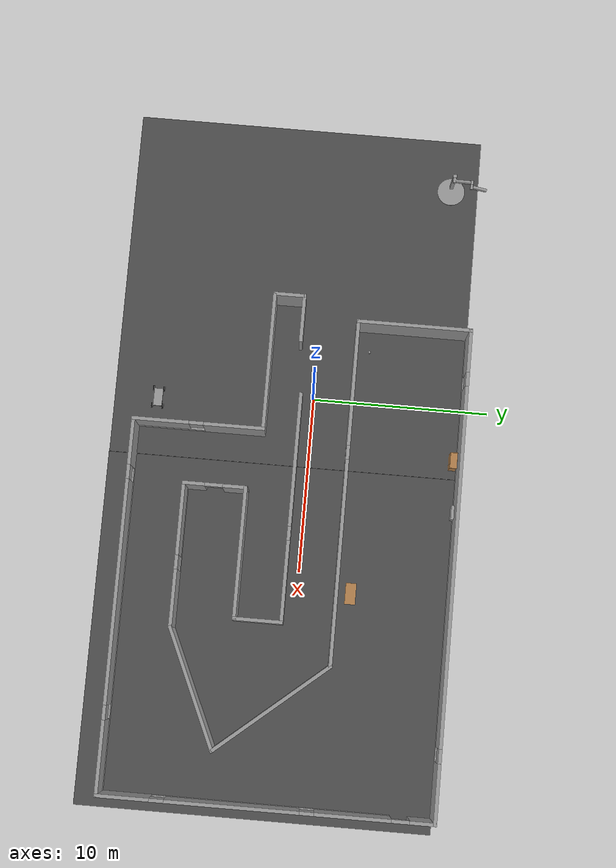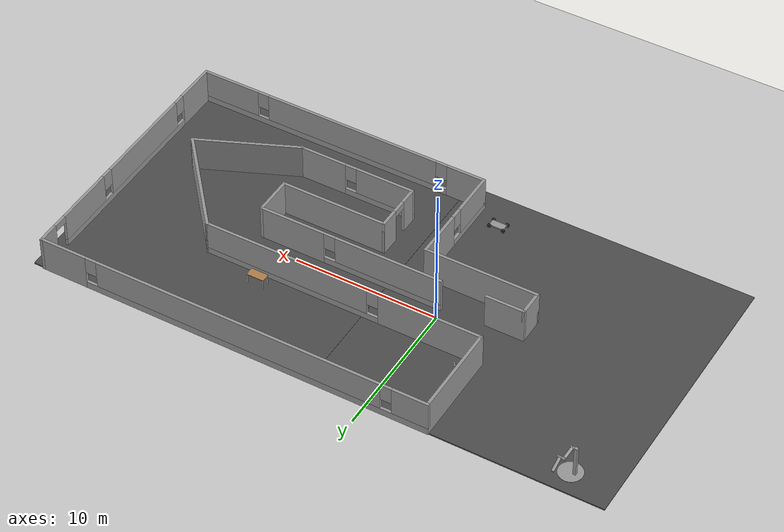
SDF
<sdf version="1.4">
 <world name="default">
  <light name="sun" type="directional">
   <pose>0 0 10 0 -0 0</pose>
   <diffuse>0.8 0.8 0.8 1</diffuse>
   <specular>0.2 0.2 0.2 1</specular>
   <attenuation>
    <range>1000</range>
    <constant>0.9</constant>
    <linear>0.01</linear>
    <quadratic>0.001</quadratic>
   </attenuation>
   <direction>-0.5 0.1 -0.9</direction>
  </light>
  <model name="ground_plane">
   <static>1</static>
   <link name="link">
    <collision name="collision">
     <geometry><plane><normal>0 0 1</normal><size>100 100</size></plane></geometry>
     <surface><friction><ode><mu>100</mu><mu2>50</mu2></ode></friction></surface>
    </collision>
    <visual name="visual">
     <cast_shadows>0</cast_shadows>
     <geometry><plane><normal>0 0 1</normal><size>100 100</size></plane></geometry>
     <material>
      <script><uri>file://media/materials/scripts/gazebo.material</uri><name>Gazebo/Grey</name></script>
     </material>
    </visual>
    <velocity_decay><linear>0</linear><angular>0</angular></velocity_decay>
   </link>
  </model>
  <physics type="ode">
   <max_step_size>0.001</max_step_size>
   <real_time_factor>1</real_time_factor>
   <real_time_update_rate>1000</real_time_update_rate>
   <gravity>0 0 -9.8</gravity>
  </physics>
  <scene><ambient>0.4 0.4 0.4 1</ambient><background>0.7 0.7 0.7 1</background><shadows>1</shadows></scene>
  <spherical_coordinates>
   <surface_model>EARTH_WGS84</surface_model>
   <latitude_deg>0</latitude_deg>
   <longitude_deg>0</longitude_deg>
   <elevation>0</elevation>
   <heading_deg>0</heading_deg>
  </spherical_coordinates>
  <model name="my_world">
   <pose>-0.155694 -0.029051 0 0 -0 0</pose>
   <link name="Wall_0">
    <collision name="Wall_0_Collision">
     <geometry><box><size>2.74 0.2 2.5</size></box></geometry>
     <pose>0 0 1.25 0 -0 0</pose>
    </collision>
    <visual name="Wall_0_Visual">
     <pose>0 0 1.25 0 -0 0</pose>
     <geometry><box><size>2.74 0.2 2.5</size></box></geometry>
     <material>
      <script><uri>file://media/materials/scripts/gazebo.material</uri><name>Gazebo/Grey</name></script>
     </material>
    </visual>
    <velocity_decay><linear>0</linear><angular>0</angular></velocity_decay>
    <pose>-4.06 -0.97 0 0 -0 3.14159</pose>
   </link>
   <link name="Wall_1">
    <collision name="Wall_1_Collision">
     <geometry><box><size>1.88 0.2 2.5</size></box></geometry>
     <pose>0 0 1.25 0 -0 0</pose>
    </collision>
    <visual name="Wall_1_Visual">
     <pose>0 0 1.25 0 -0 0</pose>
     <geometry><box><size>1.88 0.2 2.5</size></box></geometry>
     <material>
      <script><uri>file://media/materials/scripts/gazebo.material</uri><name>Gazebo/Grey</name></script>
     </material>
    </visual>
    <velocity_decay><linear>0</linear><angular>0</angular></velocity_decay>
    <pose>-5.33 -1.81 0 0 0 -1.5708</pose>
   </link>
   <link name="Wall_10">
    <collision name="Wall_10_Collision">
     <geometry><box><size>7.32682 0.2 2.5</size></box></geometry>
     <pose>0 0 1.25 0 -0 0</pose>
    </collision>
    <visual name="Wall_10_Visual">
     <pose>0 0 1.25 0 -0 0</pose>
     <geometry><box><size>7.32682 0.2 2.5</size></box></geometry>
     <material>
      <script><uri>file://media/materials/scripts/gazebo.material</uri><name>Gazebo/Grey</name></script>
     </material>
    </visual>
    <velocity_decay><linear>0</linear><angular>0</angular></velocity_decay>
    <pose>17.1548 -5.33785 0 0 0 -2.72236</pose>
   </link>
   <link name="Wall_11">
    <pose>9.86677 -6.78837 0 0 -0 3.14159</pose>
    <visual name="Wall_11_Visual_0">
     <pose>-2.47749 0 1.25 0 -0 0</pose>
     <geometry><box><size>3.31133 0.2 2.5</size></box></geometry>
     <material>
      <script><uri>file://media/materials/scripts/gazebo.material</uri><name>Gazebo/Grey</name></script>
     </material>
    </visual>
    <collision name="Wall_11_Collision_0">
     <geometry><box><size>3.31133 0.2 2.5</size></box></geometry>
     <pose>-2.47749 0 1.25 0 -0 0</pose>
    </collision>
    <visual name="Wall_11_Visual_1">
     <pose>1.65566 0 0.25 0 -0 0</pose>
     <geometry><box><size>4.95498 0.2 0.5</size></box></geometry>
     <material>
      <script><uri>file://media/materials/scripts/gazebo.material</uri><name>Gazebo/Grey</name></script>
     </material>
    </visual>
    <collision name="Wall_11_Collision_1">
     <geometry><box><size>4.95498 0.2 0.5</size></box></geometry>
     <pose>1.65566 0 0.25 0 -0 0</pose>
    </collision>
    <visual name="Wall_11_Visual_2">
     <pose>2.05566 0 1.5 0 -0 0</pose>
     <geometry><box><size>4.15498 0.2 2</size></box></geometry>
     <material>
      <script><uri>file://media/materials/scripts/gazebo.material</uri><name>Gazebo/Grey</name></script>
     </material>
    </visual>
    <collision name="Wall_11_Collision_2">
     <geometry><box><size>4.15498 0.2 2</size></box></geometry>
     <pose>2.05566 0 1.5 0 -0 0</pose>
    </collision>
    <visual name="Wall_11_Visual_3">
     <pose>-0.421827 0 1.9 0 -0 0</pose>
     <geometry><box><size>0.8 0.2 1.2</size></box></geometry>
     <material>
      <script><uri>file://media/materials/scripts/gazebo.material</uri><name>Gazebo/Grey</name></script>
     </material>
    </visual>
    <collision name="Wall_11_Collision_3">
     <geometry><box><size>0.8 0.2 1.2</size></box></geometry>
     <pose>-0.421827 0 1.9 0 -0 0</pose>
    </collision>
    <velocity_decay><linear>0</linear><angular>0</angular></velocity_decay>
   </link>
   <link name="Wall_12">
    <pose>5.83362 -5.05482 0 0 -0 1.5708</pose>
    <visual name="Wall_12_Visual_0">
     <pose>-1.19594 0 1.25 0 -0 0</pose>
     <geometry><box><size>1.27522 0.2 2.5</size></box></geometry>
     <material>
      <script><uri>file://media/materials/scripts/gazebo.material</uri><name>Gazebo/Grey</name></script>
     </material>
    </visual>
    <collision name="Wall_12_Collision_0">
     <geometry><box><size>1.27522 0.2 2.5</size></box></geometry>
     <pose>-1.19594 0 1.25 0 -0 0</pose>
    </collision>
    <visual name="Wall_12_Visual_1">
     <pose>1.13761 0 1.25 0 -0 0</pose>
     <geometry><box><size>1.39188 0.2 2.5</size></box></geometry>
     <material>
      <script><uri>file://media/materials/scripts/gazebo.material</uri><name>Gazebo/Grey</name></script>
     </material>
    </visual>
    <collision name="Wall_12_Collision_1">
     <geometry><box><size>1.39188 0.2 2.5</size></box></geometry>
     <pose>1.13761 0 1.25 0 -0 0</pose>
    </collision>
    <visual name="Wall_12_Visual_2">
     <pose>-0.058332 0 2.25 0 -0 0</pose>
     <geometry><box><size>1 0.2 0.5</size></box></geometry>
     <material>
      <script><uri>file://media/materials/scripts/gazebo.material</uri><name>Gazebo/Grey</name></script>
     </material>
    </visual>
    <collision name="Wall_12_Collision_2">
     <geometry><box><size>1 0.2 0.5</size></box></geometry>
     <pose>-0.058332 0 2.25 0 -0 0</pose>
    </collision>
    <velocity_decay><linear>0</linear><angular>0</angular></velocity_decay>
   </link>
   <link name="Wall_13">
    <collision name="Wall_13_Collision">
     <geometry><box><size>7.48798 0.2 2.5</size></box></geometry>
     <pose>0 0 1.25 0 -0 0</pose>
    </collision>
    <visual name="Wall_13_Visual">
     <pose>0 0 1.25 0 -0 0</pose>
     <geometry><box><size>7.48798 0.2 2.5</size></box></geometry>
     <material>
      <script><uri>file://media/materials/scripts/gazebo.material</uri><name>Gazebo/Grey</name></script>
     </material>
    </visual>
    <velocity_decay><linear>0</linear><angular>0</angular></velocity_decay>
    <pose>9.47761 -3.32127 0 0 -0 0</pose>
   </link>
   <link name="Wall_14">
    <collision name="Wall_14_Collision">
     <geometry><box><size>2.81801 0.2 2.5</size></box></geometry>
     <pose>0 0 1.25 0 -0 0</pose>
    </collision>
    <visual name="Wall_14_Visual">
     <pose>0 0 1.25 0 -0 0</pose>
     <geometry><box><size>2.81801 0.2 2.5</size></box></geometry>
     <material>
      <script><uri>file://media/materials/scripts/gazebo.material</uri><name>Gazebo/Grey</name></script>
     </material>
    </visual>
    <velocity_decay><linear>0</linear><angular>0</angular></velocity_decay>
    <pose>13.1216 -2.01227 0 0 -0 1.5708</pose>
   </link>
   <link name="Wall_15">
    <pose>6.71809 -0.703263 0 0 -0 3.14159</pose>
    <visual name="Wall_15_Visual_0">
     <pose>-4.1792 0 1.25 0 -0 0</pose>
     <geometry><box><size>4.64863 0.2 2.5</size></box></geometry>
     <material>
      <script><uri>file://media/materials/scripts/gazebo.material</uri><name>Gazebo/Grey</name></script>
     </material>
    </visual>
    <collision name="Wall_15_Collision_0">
     <geometry><box><size>4.64863 0.2 2.5</size></box></geometry>
     <pose>-4.1792 0 1.25 0 -0 0</pose>
    </collision>
    <visual name="Wall_15_Visual_1">
     <pose>2.32432 0 0.25 0 -0 0</pose>
     <geometry><box><size>8.35839 0.2 0.5</size></box></geometry>
     <material>
      <script><uri>file://media/materials/scripts/gazebo.material</uri><name>Gazebo/Grey</name></script>
     </material>
    </visual>
    <collision name="Wall_15_Collision_1">
     <geometry><box><size>8.35839 0.2 0.5</size></box></geometry>
     <pose>2.32432 0 0.25 0 -0 0</pose>
    </collision>
    <visual name="Wall_15_Visual_2">
     <pose>2.72432 0 1.5 0 -0 0</pose>
     <geometry><box><size>7.55839 0.2 2</size></box></geometry>
     <material>
      <script><uri>file://media/materials/scripts/gazebo.material</uri><name>Gazebo/Grey</name></script>
     </material>
    </visual>
    <collision name="Wall_15_Collision_2">
     <geometry><box><size>7.55839 0.2 2</size></box></geometry>
     <pose>2.72432 0 1.5 0 -0 0</pose>
    </collision>
    <visual name="Wall_15_Visual_3">
     <pose>-1.45488 0 1.9 0 -0 0</pose>
     <geometry><box><size>0.8 0.2 1.2</size></box></geometry>
     <material>
      <script><uri>file://media/materials/scripts/gazebo.material</uri><name>Gazebo/Grey</name></script>
     </material>
    </visual>
    <collision name="Wall_15_Collision_3">
     <geometry><box><size>0.8 0.2 1.2</size></box></geometry>
     <pose>-1.45488 0 1.9 0 -0 0</pose>
    </collision>
    <velocity_decay><linear>0</linear><angular>0</angular></velocity_decay>
   </link>
   <link name="Wall_2">
    <collision name="Wall_2_Collision">
     <geometry><box><size>7.97 0.2 2.5</size></box></geometry>
     <pose>0 0 1.25 0 -0 0</pose>
    </collision>
    <visual name="Wall_2_Visual">
     <pose>0 0 1.25 0 -0 0</pose>
     <geometry><box><size>7.97 0.2 2.5</size></box></geometry>
     <material>
      <script><uri>file://media/materials/scripts/gazebo.material</uri><name>Gazebo/Grey</name></script>
     </material>
    </visual>
    <velocity_decay><linear>0</linear><angular>0</angular></velocity_decay>
    <pose>-1.445 -2.65 0 0 -0 0</pose>
   </link>
   <link name="Wall_3">
    <pose>2.44 -6.29663 0 0 0 -1.5708</pose>
    <visual name="Wall_3_Visual_0">
     <pose>-2.01408 0 1.25 0 -0 0</pose>
     <geometry><box><size>3.46508 0.2 2.5</size></box></geometry>
     <material>
      <script><uri>file://media/materials/scripts/gazebo.material</uri><name>Gazebo/Grey</name></script>
     </material>
    </visual>
    <collision name="Wall_3_Collision_0">
     <geometry><box><size>3.46508 0.2 2.5</size></box></geometry>
     <pose>-2.01408 0 1.25 0 -0 0</pose>
    </collision>
    <visual name="Wall_3_Visual_1">
     <pose>1.73254 0 0.25 0 -0 0</pose>
     <geometry><box><size>4.02817 0.2 0.5</size></box></geometry>
     <material>
      <script><uri>file://media/materials/scripts/gazebo.material</uri><name>Gazebo/Grey</name></script>
     </material>
    </visual>
    <collision name="Wall_3_Collision_1">
     <geometry><box><size>4.02817 0.2 0.5</size></box></geometry>
     <pose>1.73254 0 0.25 0 -0 0</pose>
    </collision>
    <visual name="Wall_3_Visual_2">
     <pose>2.13254 0 1.5 0 -0 0</pose>
     <geometry><box><size>3.22817 0.2 2</size></box></geometry>
     <material>
      <script><uri>file://media/materials/scripts/gazebo.material</uri><name>Gazebo/Grey</name></script>
     </material>
    </visual>
    <collision name="Wall_3_Collision_2">
     <geometry><box><size>3.22817 0.2 2</size></box></geometry>
     <pose>2.13254 0 1.5 0 -0 0</pose>
    </collision>
    <visual name="Wall_3_Visual_3">
     <pose>0.118459 0 1.9 0 -0 0</pose>
     <geometry><box><size>0.8 0.2 1.2</size></box></geometry>
     <material>
      <script><uri>file://media/materials/scripts/gazebo.material</uri><name>Gazebo/Grey</name></script>
     </material>
    </visual>
    <collision name="Wall_3_Collision_3">
     <geometry><box><size>0.8 0.2 1.2</size></box></geometry>
     <pose>0.118459 0 1.9 0 -0 0</pose>
    </collision>
    <velocity_decay><linear>0</linear><angular>0</angular></velocity_decay>
   </link>
   <link name="Wall_4">
    <pose>12.8753 -9.94325 0 0 -0 0</pose>
    <visual name="Wall_4_Visual_0">
     <pose>-9.16144 0 1.25 0 -0 0</pose>
     <geometry><box><size>2.74774 0.2 2.5</size></box></geometry>
     <material>
      <script><uri>file://media/materials/scripts/gazebo.material</uri><name>Gazebo/Grey</name></script>
     </material>
    </visual>
    <collision name="Wall_4_Collision_0">
     <geometry><box><size>2.74774 0.2 2.5</size></box></geometry>
     <pose>-9.16144 0 1.25 0 -0 0</pose>
    </collision>
    <visual name="Wall_4_Visual_1">
     <pose>1.37387 0 0.25 0 -0 0</pose>
     <geometry><box><size>18.3229 0.2 0.5</size></box></geometry>
     <material>
      <script><uri>file://media/materials/scripts/gazebo.material</uri><name>Gazebo/Grey</name></script>
     </material>
    </visual>
    <collision name="Wall_4_Collision_1">
     <geometry><box><size>18.3229 0.2 0.5</size></box></geometry>
     <pose>1.37387 0 0.25 0 -0 0</pose>
    </collision>
    <visual name="Wall_4_Visual_2">
     <pose>-0.715182 0 1.5 0 -0 0</pose>
     <geometry><box><size>12.5448 0.2 2</size></box></geometry>
     <material>
      <script><uri>file://media/materials/scripts/gazebo.material</uri><name>Gazebo/Grey</name></script>
     </material>
    </visual>
    <collision name="Wall_4_Collision_2">
     <geometry><box><size>12.5448 0.2 2</size></box></geometry>
     <pose>-0.715182 0 1.5 0 -0 0</pose>
    </collision>
    <visual name="Wall_4_Visual_3">
     <pose>8.44626 0 1.5 0 -0 0</pose>
     <geometry><box><size>4.1781 0.2 2</size></box></geometry>
     <material>
      <script><uri>file://media/materials/scripts/gazebo.material</uri><name>Gazebo/Grey</name></script>
     </material>
    </visual>
    <collision name="Wall_4_Collision_3">
     <geometry><box><size>4.1781 0.2 2</size></box></geometry>
     <pose>8.44626 0 1.5 0 -0 0</pose>
    </collision>
    <visual name="Wall_4_Visual_4">
     <pose>-7.38757 0 1.9 0 -0 0</pose>
     <geometry><box><size>0.8 0.2 1.2</size></box></geometry>
     <material>
      <script><uri>file://media/materials/scripts/gazebo.material</uri><name>Gazebo/Grey</name></script>
     </material>
    </visual>
    <collision name="Wall_4_Collision_4">
     <geometry><box><size>0.8 0.2 1.2</size></box></geometry>
     <pose>-7.38757 0 1.9 0 -0 0</pose>
    </collision>
    <visual name="Wall_4_Visual_5">
     <pose>5.95721 0 1.9 0 -0 0</pose>
     <geometry><box><size>0.8 0.2 1.2</size></box></geometry>
     <material>
      <script><uri>file://media/materials/scripts/gazebo.material</uri><name>Gazebo/Grey</name></script>
     </material>
    </visual>
    <collision name="Wall_4_Collision_5">
     <geometry><box><size>0.8 0.2 1.2</size></box></geometry>
     <pose>5.95721 0 1.9 0 -0 0</pose>
    </collision>
    <velocity_decay><linear>0</linear><angular>0</angular></velocity_decay>
   </link>
   <link name="Wall_5">
    <pose>23.3106 -0.68867 0 0 -0 1.5708</pose>
    <visual name="Wall_5_Visual_0">
     <pose>-7.86255 0 1.25 0 -0 0</pose>
     <geometry><box><size>2.98406 0.2 2.5</size></box></geometry>
     <material>
      <script><uri>file://media/materials/scripts/gazebo.material</uri><name>Gazebo/Grey</name></script>
     </material>
    </visual>
    <collision name="Wall_5_Collision_0">
     <geometry><box><size>2.98406 0.2 2.5</size></box></geometry>
     <pose>-7.86255 0 1.25 0 -0 0</pose>
    </collision>
    <visual name="Wall_5_Visual_1">
     <pose>8.61442 0 1.25 0 -0 0</pose>
     <geometry><box><size>1.48033 0.2 2.5</size></box></geometry>
     <material>
      <script><uri>file://media/materials/scripts/gazebo.material</uri><name>Gazebo/Grey</name></script>
     </material>
    </visual>
    <collision name="Wall_5_Collision_1">
     <geometry><box><size>1.48033 0.2 2.5</size></box></geometry>
     <pose>8.61442 0 1.25 0 -0 0</pose>
    </collision>
    <visual name="Wall_5_Visual_2">
     <pose>0.251864 0 0.25 0 -0 0</pose>
     <geometry><box><size>13.2448 0.2 0.5</size></box></geometry>
     <material>
      <script><uri>file://media/materials/scripts/gazebo.material</uri><name>Gazebo/Grey</name></script>
     </material>
    </visual>
    <collision name="Wall_5_Collision_2">
     <geometry><box><size>13.2448 0.2 0.5</size></box></geometry>
     <pose>0.251864 0 0.25 0 -0 0</pose>
    </collision>
    <visual name="Wall_5_Visual_3">
     <pose>-1.86131 0 1.5 0 -0 0</pose>
     <geometry><box><size>7.41843 0.2 2</size></box></geometry>
     <material>
      <script><uri>file://media/materials/scripts/gazebo.material</uri><name>Gazebo/Grey</name></script>
     </material>
    </visual>
    <collision name="Wall_5_Collision_3">
     <geometry><box><size>7.41843 0.2 2</size></box></geometry>
     <pose>-1.86131 0 1.5 0 -0 0</pose>
    </collision>
    <visual name="Wall_5_Visual_4">
     <pose>4.76108 0 1.5 0 -0 0</pose>
     <geometry><box><size>4.22635 0.2 2</size></box></geometry>
     <material>
      <script><uri>file://media/materials/scripts/gazebo.material</uri><name>Gazebo/Grey</name></script>
     </material>
    </visual>
    <collision name="Wall_5_Collision_4">
     <geometry><box><size>4.22635 0.2 2</size></box></geometry>
     <pose>4.76108 0 1.5 0 -0 0</pose>
    </collision>
    <visual name="Wall_5_Visual_5">
     <pose>-5.97053 0 1.9 0 -0 0</pose>
     <geometry><box><size>0.8 0.2 1.2</size></box></geometry>
     <material>
      <script><uri>file://media/materials/scripts/gazebo.material</uri><name>Gazebo/Grey</name></script>
     </material>
    </visual>
    <collision name="Wall_5_Collision_5">
     <geometry><box><size>0.8 0.2 1.2</size></box></geometry>
     <pose>-5.97053 0 1.9 0 -0 0</pose>
    </collision>
    <visual name="Wall_5_Visual_6">
     <pose>2.24791 0 1.9 0 -0 0</pose>
     <geometry><box><size>0.8 0.2 1.2</size></box></geometry>
     <material>
      <script><uri>file://media/materials/scripts/gazebo.material</uri><name>Gazebo/Grey</name></script>
     </material>
    </visual>
    <collision name="Wall_5_Collision_6">
     <geometry><box><size>0.8 0.2 1.2</size></box></geometry>
     <pose>2.24791 0 1.9 0 -0 0</pose>
    </collision>
    <visual name="Wall_5_Visual_7">
     <pose>7.37425 0 2.25 0 -0 0</pose>
     <geometry><box><size>1 0.2 0.5</size></box></geometry>
     <material>
      <script><uri>file://media/materials/scripts/gazebo.material</uri><name>Gazebo/Grey</name></script>
     </material>
    </visual>
    <collision name="Wall_5_Collision_7">
     <geometry><box><size>1 0.2 0.5</size></box></geometry>
     <pose>7.37425 0 2.25 0 -0 0</pose>
    </collision>
    <velocity_decay><linear>0</linear><angular>0</angular></velocity_decay>
   </link>
   <link name="Wall_6">
    <pose>9.58375 8.56591 0 0 -0 3.14159</pose>
    <visual name="Wall_6_Visual_0">
     <pose>-12.1447 0 1.25 0 -0 0</pose>
     <geometry><box><size>3.36439 0.2 2.5</size></box></geometry>
     <material>
      <script><uri>file://media/materials/scripts/gazebo.material</uri><name>Gazebo/Grey</name></script>
     </material>
    </visual>
    <collision name="Wall_6_Collision_0">
     <geometry><box><size>3.36439 0.2 2.5</size></box></geometry>
     <pose>-12.1447 0 1.25 0 -0 0</pose>
    </collision>
    <visual name="Wall_6_Visual_1">
     <pose>1.6822 0 0.25 0 -0 0</pose>
     <geometry><box><size>24.2893 0.2 0.5</size></box></geometry>
     <material>
      <script><uri>file://media/materials/scripts/gazebo.material</uri><name>Gazebo/Grey</name></script>
     </material>
    </visual>
    <collision name="Wall_6_Collision_1">
     <geometry><box><size>24.2893 0.2 0.5</size></box></geometry>
     <pose>1.6822 0 0.25 0 -0 0</pose>
    </collision>
    <visual name="Wall_6_Visual_2">
     <pose>0.434333 0 1.5 0 -0 0</pose>
     <geometry><box><size>20.1936 0.2 2</size></box></geometry>
     <material>
      <script><uri>file://media/materials/scripts/gazebo.material</uri><name>Gazebo/Grey</name></script>
     </material>
    </visual>
    <collision name="Wall_6_Collision_2">
     <geometry><box><size>20.1936 0.2 2</size></box></geometry>
     <pose>0.434333 0 1.5 0 -0 0</pose>
    </collision>
    <visual name="Wall_6_Visual_3">
     <pose>12.579 0 1.5 0 -0 0</pose>
     <geometry><box><size>2.49573 0.2 2</size></box></geometry>
     <material>
      <script><uri>file://media/materials/scripts/gazebo.material</uri><name>Gazebo/Grey</name></script>
     </material>
    </visual>
    <collision name="Wall_6_Collision_3">
     <geometry><box><size>2.49573 0.2 2</size></box></geometry>
     <pose>12.579 0 1.5 0 -0 0</pose>
    </collision>
    <visual name="Wall_6_Visual_4">
     <pose>-10.0625 0 1.9 0 -0 0</pose>
     <geometry><box><size>0.8 0.2 1.2</size></box></geometry>
     <material>
      <script><uri>file://media/materials/scripts/gazebo.material</uri><name>Gazebo/Grey</name></script>
     </material>
    </visual>
    <collision name="Wall_6_Collision_4">
     <geometry><box><size>0.8 0.2 1.2</size></box></geometry>
     <pose>-10.0625 0 1.9 0 -0 0</pose>
    </collision>
    <visual name="Wall_6_Visual_5">
     <pose>10.9311 0 1.9 0 -0 0</pose>
     <geometry><box><size>0.8 0.2 1.2</size></box></geometry>
     <material>
      <script><uri>file://media/materials/scripts/gazebo.material</uri><name>Gazebo/Grey</name></script>
     </material>
    </visual>
    <collision name="Wall_6_Collision_5">
     <geometry><box><size>0.8 0.2 1.2</size></box></geometry>
     <pose>10.9311 0 1.9 0 -0 0</pose>
    </collision>
    <velocity_decay><linear>0</linear><angular>0</angular></velocity_decay>
   </link>
   <link name="Wall_7">
    <collision name="Wall_7_Collision">
     <geometry><box><size>6.56813 0.2 2.5</size></box></geometry>
     <pose>0 0 1.25 0 -0 0</pose>
    </collision>
    <visual name="Wall_7_Visual">
     <pose>0 0 1.25 0 -0 0</pose>
     <geometry><box><size>6.56813 0.2 2.5</size></box></geometry>
     <material>
      <script><uri>file://media/materials/scripts/gazebo.material</uri><name>Gazebo/Grey</name></script>
     </material>
    </visual>
    <velocity_decay><linear>0</linear><angular>0</angular></velocity_decay>
    <pose>-4.14312 5.38184 0 0 0 -1.5708</pose>
   </link>
   <link name="Wall_8">
    <pose>5.58597 2.19778 0 0 -0 0</pose>
    <visual name="Wall_8_Visual_0">
     <pose>-6.22148 0 1.25 0 -0 0</pose>
     <geometry><box><size>7.21522 0.2 2.5</size></box></geometry>
     <material>
      <script><uri>file://media/materials/scripts/gazebo.material</uri><name>Gazebo/Grey</name></script>
     </material>
    </visual>
    <collision name="Wall_8_Collision_0">
     <geometry><box><size>7.21522 0.2 2.5</size></box></geometry>
     <pose>-6.22148 0 1.25 0 -0 0</pose>
    </collision>
    <visual name="Wall_8_Visual_1">
     <pose>3.60761 0 0.25 0 -0 0</pose>
     <geometry><box><size>12.443 0.2 0.5</size></box></geometry>
     <material>
      <script><uri>file://media/materials/scripts/gazebo.material</uri><name>Gazebo/Grey</name></script>
     </material>
    </visual>
    <collision name="Wall_8_Collision_1">
     <geometry><box><size>12.443 0.2 0.5</size></box></geometry>
     <pose>3.60761 0 0.25 0 -0 0</pose>
    </collision>
    <visual name="Wall_8_Visual_2">
     <pose>4.00761 0 1.5 0 -0 0</pose>
     <geometry><box><size>11.643 0.2 2</size></box></geometry>
     <material>
      <script><uri>file://media/materials/scripts/gazebo.material</uri><name>Gazebo/Grey</name></script>
     </material>
    </visual>
    <collision name="Wall_8_Collision_2">
     <geometry><box><size>11.643 0.2 2</size></box></geometry>
     <pose>4.00761 0 1.5 0 -0 0</pose>
    </collision>
    <visual name="Wall_8_Visual_3">
     <pose>-2.21387 0 1.9 0 -0 0</pose>
     <geometry><box><size>0.8 0.2 1.2</size></box></geometry>
     <material>
      <script><uri>file://media/materials/scripts/gazebo.material</uri><name>Gazebo/Grey</name></script>
     </material>
    </visual>
    <collision name="Wall_8_Collision_3">
     <geometry><box><size>0.8 0.2 1.2</size></box></geometry>
     <pose>-2.21387 0 1.9 0 -0 0</pose>
    </collision>
    <velocity_decay><linear>0</linear><angular>0</angular></velocity_decay>
   </link>
   <link name="Wall_9">
    <collision name="Wall_9_Collision">
     <geometry><box><size>8.13615 0.2 2.5</size></box></geometry>
     <pose>0 0 1.25 0 -0 0</pose>
    </collision>
    <visual name="Wall_9_Visual">
     <pose>0 0 1.25 0 -0 0</pose>
     <geometry><box><size>8.13615 0.2 2.5</size></box></geometry>
     <material>
      <script><uri>file://media/materials/scripts/gazebo.material</uri><name>Gazebo/Grey</name></script>
     </material>
    </visual>
    <velocity_decay><linear>0</linear><angular>0</angular></velocity_decay>
    <pose>17.8623 -0.844778 0 0 0 -0.873775</pose>
   </link>
   <link name="Window_1">
    <collision name="Window_1_Collision">
     <geometry><box><size>0.8 0.2 0.8</size></box></geometry>
     <pose>0 0 0.4 0 -0 0</pose>
    </collision>
    <visual name="Window_1_Visual">
     <pose>0 0 0.4 0 -0 0</pose>
     <geometry><box><size>0.8 0.2 0.8</size></box></geometry>
     <material>
      <script><uri>file://media/materials/scripts/gazebo.material</uri><name>Gazebo/Grey</name></script>
     </material>
    </visual>
    <velocity_decay><linear>0</linear><angular>0</angular></velocity_decay>
    <pose>6.1387 8.39437 0.5 0 -0 0</pose>
   </link>
   <static>1</static>
  </model>
  <model name="asphalt_plane">
   <static>1</static>
   <link name="link">
    <collision name="collision"><geometry><box><size>20 20 0.1</size></box></geometry></collision>
    <visual name="visual">
     <cast_shadows>0</cast_shadows>
     <geometry><box><size>20 20 0.1</size></box></geometry>
     <material>
      <script>
       <uri>model://asphalt_plane/materials/scripts</uri>
       <uri>model://asphalt_plane/materials/textures</uri>
       <name>vrc/asphalt</name>
      </script>
     </material>
    </visual>
    <velocity_decay><linear>0</linear><angular>0</angular></velocity_decay>
   </link>
   <pose>13.9804 -1.46923 0 0 -0 0</pose>
  </model>
  <model name="asphalt_plane_0">
   <static>1</static>
   <link name="link">
    <collision name="collision"><geometry><box><size>20 20 0.1</size></box></geometry></collision>
    <visual name="visual">
     <cast_shadows>0</cast_shadows>
     <geometry><box><size>20 20 0.1</size></box></geometry>
     <material>
      <script>
       <uri>model://asphalt_plane/materials/scripts</uri>
       <uri>model://asphalt_plane/materials/textures</uri>
       <name>vrc/asphalt</name>
      </script>
     </material>
    </visual>
    <velocity_decay><linear>0</linear><angular>0</angular></velocity_decay>
   </link>
   <pose>-6.03466 -1.4517 0 0 -0 0</pose>
  </model>
  <model name="beer">
   <link name="link">
    <pose>0 0 0.115 0 -0 0</pose>
    <inertial>
     <mass>0.39</mass>
     <inertia><ixx>0.00058</ixx><ixy>0</ixy><ixz>0</ixz><iyy>0.00058</iyy><iyz>0</iyz><izz>0.00019</izz></inertia>
    </inertial>
    <collision name="collision">
     <geometry><cylinder><radius>0.055</radius><length>0.23</length></cylinder></geometry>
    </collision>
    <visual name="visual">
     <geometry><cylinder><radius>0.055</radius><length>0.23</length></cylinder></geometry>
     <material>
      <script>
       <uri>model://beer/materials/scripts</uri>
       <uri>model://beer/materials/textures</uri>
       <name>Beer/Diffuse</name>
      </script>
     </material>
    </visual>
    <velocity_decay><linear>0</linear><angular>0</angular></velocity_decay>
   </link>
   <pose>-3 3.00004 0.049995 2.1e-05 8.8e-05 2e-06</pose>
   <static>0</static>
  </model>
  <model name="bookshelf">
   <static>1</static>
   <link name="link">
    <inertial><mass>1</mass></inertial>
    <collision name="back">
     <pose>0 0.005 0.6 0 -0 0</pose>
     <geometry><box><size>0.9 0.01 1.2</size></box></geometry>
    </collision>
    <visual name="visual1">
     <pose>0 0.005 0.6 0 -0 0</pose>
     <geometry><box><size>0.9 0.01 1.2</size></box></geometry>
     <material>
      <script><uri>file://media/materials/scripts/gazebo.material</uri><name>Gazebo/Wood</name></script>
     </material>
    </visual>
    <collision name="left_side">
     <pose>0.45 -0.195 0.6 0 -0 0</pose>
     <geometry><box><size>0.02 0.4 1.2</size></box></geometry>
    </collision>
    <visual name="visual2">
     <pose>0.45 -0.195 0.6 0 -0 0</pose>
     <geometry><box><size>0.02 0.4 1.2</size></box></geometry>
     <material>
      <script><uri>file://media/materials/scripts/gazebo.material</uri><name>Gazebo/Wood</name></script>
     </material>
    </visual>
    <collision name="right_side">
     <pose>-0.45 -0.195 0.6 0 -0 0</pose>
     <geometry><box><size>0.02 0.4 1.2</size></box></geometry>
    </collision>
    <visual name="visual3">
     <pose>-0.45 -0.195 0.6 0 -0 0</pose>
     <geometry><box><size>0.02 0.4 1.2</size></box></geometry>
     <material>
      <script><uri>file://media/materials/scripts/gazebo.material</uri><name>Gazebo/Wood</name></script>
     </material>
    </visual>
    <collision name="bottom">
     <pose>0 -0.195 0.03 0 -0 0</pose>
     <geometry><box><size>0.88 0.4 0.06</size></box></geometry>
    </collision>
    <visual name="visual4">
     <pose>0 -0.195 0.03 0 -0 0</pose>
     <geometry><box><size>0.88 0.4 0.06</size></box></geometry>
     <material>
      <script><uri>file://media/materials/scripts/gazebo.material</uri><name>Gazebo/Wood</name></script>
     </material>
    </visual>
    <collision name="top">
     <pose>0 -0.195 1.19 0 -0 0</pose>
     <geometry><box><size>0.88 0.4 0.02</size></box></geometry>
    </collision>
    <visual name="visual5">
     <pose>0 -0.195 1.19 0 -0 0</pose>
     <geometry><box><size>0.88 0.4 0.02</size></box></geometry>
     <material>
      <script><uri>file://media/materials/scripts/gazebo.material</uri><name>Gazebo/Wood</name></script>
     </material>
    </visual>
    <collision name="low_shelf">
     <pose>0 -0.195 0.43 0 -0 0</pose>
     <geometry><box><size>0.88 0.4 0.02</size></box></geometry>
    </collision>
    <visual name="visual6">
     <pose>0 -0.195 0.43 0 -0 0</pose>
     <geometry><box><size>0.88 0.4 0.02</size></box></geometry>
     <material>
      <script><uri>file://media/materials/scripts/gazebo.material</uri><name>Gazebo/Wood</name></script>
     </material>
    </visual>
    <collision name="high_shelf">
     <pose>0 -0.195 0.8 0 -0 0</pose>
     <geometry><box><size>0.88 0.4 0.02</size></box></geometry>
    </collision>
    <visual name="visual7">
     <pose>0 -0.195 0.8 0 -0 0</pose>
     <geometry><box><size>0.88 0.4 0.02</size></box></geometry>
     <material>
      <script><uri>file://media/materials/scripts/gazebo.material</uri><name>Gazebo/Wood</name></script>
     </material>
    </visual>
    <velocity_decay><linear>0</linear><angular>0</angular></velocity_decay>
   </link>
   <pose>3 8.41256 0 0 -0 0</pose>
  </model>
  <model name="cart_rigid_suspension">
   <link name="chassis">
    <pose>0 0 0.15 0 -0 0</pose>
    <inertial>
     <pose>0.1 0 0 0 -0 0</pose>
     <mass>10</mass>
     <inertia>
      <ixx>0.216667</ixx>
      <iyy>0.841667</iyy>
      <izz>1.04167</izz>
      <ixy>0</ixy>
      <ixz>0</ixz>
      <iyz>0</iyz>
     </inertia>
    </inertial>
    <collision name="collision"><geometry><box><size>1 0.5 0.1</size></box></geometry></collision>
    <visual name="visual">
     <geometry><box><size>1 0.5 0.1</size></box></geometry>
     <material>
      <script><uri>file://media/materials/scripts/gazebo.material</uri><name>Gazebo/Grey</name></script>
     </material>
    </visual>
    <velocity_decay><linear>0</linear><angular>0</angular></velocity_decay>
   </link>
   <link name="wheel_front_left">
    <pose>0.5 0.298 0.15 -1.5708 0 0</pose>
    <inertial>
     <mass>0.5</mass>
     <inertia>
      <ixx>0.00307917</ixx>
      <iyy>0.00307917</iyy>
      <izz>0.005625</izz>
      <ixy>0</ixy>
      <ixz>0</ixz>
      <iyz>0</iyz>
     </inertia>
    </inertial>
    <collision name="collision">
     <geometry><cylinder><radius>0.15</radius><length>0.08</length></cylinder></geometry>
    </collision>
    <visual name="visual">
     <geometry><cylinder><radius>0.15</radius><length>0.08</length></cylinder></geometry>
     <material>
      <script><uri>file://media/materials/scripts/gazebo.material</uri><name>Gazebo/Black</name></script>
     </material>
    </visual>
    <velocity_decay><linear>0</linear><angular>0</angular></velocity_decay>
   </link>
   <joint name="wheel_front_left_spin" type="revolute">
    <parent>chassis</parent>
    <child>wheel_front_left</child>
    <axis><xyz>0 0 1</xyz><limit><lower>-1e+16</lower><upper>1e+16</upper></limit></axis>
   </joint>
   <link name="wheel_front_right">
    <pose>0.5 -0.298 0.15 -1.5708 0 0</pose>
    <inertial>
     <mass>0.5</mass>
     <inertia>
      <ixx>0.00307917</ixx>
      <iyy>0.00307917</iyy>
      <izz>0.005625</izz>
      <ixy>0</ixy>
      <ixz>0</ixz>
      <iyz>0</iyz>
     </inertia>
    </inertial>
    <collision name="collision">
     <geometry><cylinder><radius>0.15</radius><length>0.08</length></cylinder></geometry>
    </collision>
    <visual name="visual">
     <geometry><cylinder><radius>0.15</radius><length>0.08</length></cylinder></geometry>
     <material>
      <script><uri>file://media/materials/scripts/gazebo.material</uri><name>Gazebo/Black</name></script>
     </material>
    </visual>
    <velocity_decay><linear>0</linear><angular>0</angular></velocity_decay>
   </link>
   <joint name="wheel_front_right_spin" type="revolute">
    <parent>chassis</parent>
    <child>wheel_front_right</child>
    <axis><xyz>0 0 1</xyz><limit><lower>-1e+16</lower><upper>1e+16</upper></limit></axis>
   </joint>
   <link name="wheel_rear_left">
    <pose>-0.5 0.298 0.15 -1.5708 0 0</pose>
    <inertial>
     <mass>0.5</mass>
     <inertia>
      <ixx>0.00307917</ixx>
      <iyy>0.00307917</iyy>
      <izz>0.005625</izz>
      <ixy>0</ixy>
      <ixz>0</ixz>
      <iyz>0</iyz>
     </inertia>
    </inertial>
    <collision name="collision">
     <geometry><cylinder><radius>0.15</radius><length>0.08</length></cylinder></geometry>
    </collision>
    <visual name="visual">
     <geometry><cylinder><radius>0.15</radius><length>0.08</length></cylinder></geometry>
     <material>
      <script><uri>file://media/materials/scripts/gazebo.material</uri><name>Gazebo/Black</name></script>
     </material>
    </visual>
    <velocity_decay><linear>0</linear><angular>0</angular></velocity_decay>
   </link>
   <joint name="wheel_rear_left_spin" type="revolute">
    <parent>chassis</parent>
    <child>wheel_rear_left</child>
    <axis><xyz>0 0 1</xyz><limit><lower>-1e+16</lower><upper>1e+16</upper></limit></axis>
   </joint>
   <link name="wheel_rear_right">
    <pose>-0.5 -0.298 0.15 -1.5708 0 0</pose>
    <inertial>
     <mass>0.5</mass>
     <inertia>
      <ixx>0.00307917</ixx>
      <iyy>0.00307917</iyy>
      <izz>0.005625</izz>
      <ixy>0</ixy>
      <ixz>0</ixz>
      <iyz>0</iyz>
     </inertia>
    </inertial>
    <collision name="collision">
     <geometry><cylinder><radius>0.15</radius><length>0.08</length></cylinder></geometry>
    </collision>
    <visual name="visual">
     <geometry><cylinder><radius>0.15</radius><length>0.08</length></cylinder></geometry>
     <material>
      <script><uri>file://media/materials/scripts/gazebo.material</uri><name>Gazebo/Black</name></script>
     </material>
    </visual>
    <velocity_decay><linear>0</linear><angular>0</angular></velocity_decay>
   </link>
   <joint name="wheel_rear_right_spin" type="revolute">
    <parent>chassis</parent>
    <child>wheel_rear_right</child>
    <axis><xyz>0 0 1</xyz><limit><lower>-1e+16</lower><upper>1e+16</upper></limit></axis>
   </joint>
   <pose>0.629689 -8.94199 0.050001 -1e-06 -0 -0.009344</pose>
   <static>0</static>
  </model>
  <model name="double_pendulum_with_base">
   <link name="base">
    <inertial>
     <mass>100</mass>
     <inertia><ixx>1</ixx><ixy>0</ixy><ixz>0</ixz><iyy>1</iyy><iyz>0</iyz><izz>1</izz></inertia>
    </inertial>
    <visual name="vis_plate_on_ground">
     <pose>0 0 0.01 0 -0 0</pose>
     <geometry><cylinder><radius>0.8</radius><length>0.02</length></cylinder></geometry>
     <material>
      <script><uri>file://media/materials/scripts/gazebo.material</uri><name>Gazebo/Grey</name></script>
     </material>
    </visual>
    <visual name="vis_pole">
     <pose>-0.275 0 1.1 0 -0 0</pose>
     <geometry><box><size>0.2 0.2 2.2</size></box></geometry>
     <material>
      <script><uri>file://media/materials/scripts/gazebo.material</uri><name>Gazebo/Grey</name></script>
     </material>
    </visual>
    <collision name="col_plate_on_ground">
     <pose>0 0 0.01 0 -0 0</pose>
     <geometry><cylinder><radius>0.8</radius><length>0.02</length></cylinder></geometry>
    </collision>
    <collision name="col_pole">
     <pose>-0.275 0 1.1 0 -0 0</pose>
     <geometry><box><size>0.2 0.2 2.2</size></box></geometry>
    </collision>
    <velocity_decay><linear>0</linear><angular>0</angular></velocity_decay>
   </link>
   <link name="upper_link">
    <pose>0 0 2.1 -1.5708 0 0</pose>
    <inertial>
     <pose>0 0 0.5 0 -0 0</pose>
     <inertia><ixx>1</ixx><ixy>0</ixy><ixz>0</ixz><iyy>1</iyy><iyz>0</iyz><izz>1</izz></inertia>
     <mass>1</mass>
    </inertial>
    <visual name="vis_upper_joint">
     <pose>-0.05 0 0 3.14159 1.57079 3.14159</pose>
     <geometry><cylinder><radius>0.1</radius><length>0.3</length></cylinder></geometry>
     <material>
      <script><uri>file://media/materials/scripts/gazebo.material</uri><name>Gazebo/Grey</name></script>
     </material>
    </visual>
    <visual name="vis_lower_joint">
     <pose>0 0 1 3.14159 1.57079 3.14159</pose>
     <geometry><cylinder><radius>0.1</radius><length>0.2</length></cylinder></geometry>
     <material>
      <script><uri>file://media/materials/scripts/gazebo.material</uri><name>Gazebo/Grey</name></script>
     </material>
    </visual>
    <visual name="vis_cylinder">
     <pose>0 0 0.5 0 -0 0</pose>
     <geometry><cylinder><radius>0.1</radius><length>0.9</length></cylinder></geometry>
     <material>
      <script><uri>file://media/materials/scripts/gazebo.material</uri><name>Gazebo/Grey</name></script>
     </material>
    </visual>
    <collision name="col_upper_joint">
     <pose>-0.05 0 0 3.14159 1.57079 3.14159</pose>
     <geometry><cylinder><radius>0.1</radius><length>0.3</length></cylinder></geometry>
    </collision>
    <collision name="col_lower_joint">
     <pose>0 0 1 3.14159 1.57079 3.14159</pose>
     <geometry><cylinder><radius>0.1</radius><length>0.2</length></cylinder></geometry>
    </collision>
    <collision name="col_cylinder">
     <pose>0 0 0.5 0 -0 0</pose>
     <geometry><cylinder><radius>0.1</radius><length>0.9</length></cylinder></geometry>
    </collision>
    <velocity_decay><linear>0</linear><angular>0</angular></velocity_decay>
   </link>
   <link name="lower_link">
    <pose>0.25 1 2.1 -2 0 0</pose>
    <inertial>
     <pose>0 0 0.5 0 -0 0</pose>
     <inertia><ixx>1</ixx><ixy>0</ixy><ixz>0</ixz><iyy>1</iyy><iyz>0</iyz><izz>1</izz></inertia>
     <mass>1</mass>
    </inertial>
    <visual name="vis_lower_joint">
     <pose>0 0 0 3.14159 1.57079 3.14159</pose>
     <geometry><cylinder><radius>0.08</radius><length>0.3</length></cylinder></geometry>
     <material>
      <script><uri>file://media/materials/scripts/gazebo.material</uri><name>Gazebo/Grey</name></script>
     </material>
    </visual>
    <visual name="vis_cylinder">
     <pose>0 0 0.5 0 -0 0</pose>
     <geometry><cylinder><radius>0.1</radius><length>0.9</length></cylinder></geometry>
     <material>
      <script><uri>file://media/materials/scripts/gazebo.material</uri><name>Gazebo/Grey</name></script>
     </material>
    </visual>
    <collision name="col_lower_joint">
     <pose>0 0 0 3.14159 1.57079 3.14159</pose>
     <geometry><cylinder><radius>0.08</radius><length>0.3</length></cylinder></geometry>
    </collision>
    <collision name="col_cylinder">
     <pose>0 0 0.5 0 -0 0</pose>
     <geometry><cylinder><radius>0.1</radius><length>0.9</length></cylinder></geometry>
    </collision>
    <velocity_decay><linear>0</linear><angular>0</angular></velocity_decay>
   </link>
   <joint name="upper_joint" type="revolute">
    <parent>base</parent>
    <child>upper_link</child>
    <axis><xyz>1 0 0</xyz><limit><lower>-1e+16</lower><upper>1e+16</upper></limit></axis>
   </joint>
   <joint name="lower_joint" type="revolute">
    <parent>upper_link</parent>
    <child>lower_link</child>
    <axis><xyz>1 0 0</xyz><limit><lower>-1e+16</lower><upper>1e+16</upper></limit></axis>
   </joint>
   <pose>-13.0048 7.00066 0.050007 -1.1e-05 6e-06 -0.017533</pose>
   <static>0</static>
  </model>
  <model name="table">
   <static>1</static>
   <link name="link">
    <collision name="surface">
     <pose>0 0 0.75 0 -0 0</pose>
     <geometry><box><size>1.2 0.6 0.03</size></box></geometry>
     <surface><friction><ode><mu>0.6</mu><mu2>0.6</mu2></ode></friction></surface>
    </collision>
    <visual name="visual1">
     <pose>0 0 0.77 0 -0 0</pose>
     <geometry><box><size>1.2 0.6 0.03</size></box></geometry>
     <material>
      <script><uri>file://media/materials/scripts/gazebo.material</uri><name>Gazebo/Wood</name></script>
     </material>
    </visual>
    <collision name="front_left_leg">
     <pose>0.56 0.26 0.38 0 -0 0</pose>
     <geometry><box><size>0.04 0.04 0.77</size></box></geometry>
    </collision>
    <visual name="front_left_leg">
     <pose>0.56 0.26 0.38 0 -0 0</pose>
     <geometry><box><size>0.04 0.04 0.77</size></box></geometry>
     <material>
      <script><uri>file://media/materials/scripts/gazebo.material</uri><name>Gazebo/White</name></script>
     </material>
    </visual>
    <collision name="front_right_leg">
     <pose>0.56 -0.26 0.38 0 -0 0</pose>
     <geometry><box><size>0.04 0.04 0.77</size></box></geometry>
    </collision>
    <visual name="front_right_leg">
     <pose>0.56 -0.26 0.38 0 -0 0</pose>
     <geometry><box><size>0.04 0.04 0.77</size></box></geometry>
     <material>
      <script><uri>file://media/materials/scripts/gazebo.material</uri><name>Gazebo/White</name></script>
     </material>
    </visual>
    <collision name="back_right_leg">
     <pose>-0.56 -0.26 0.38 0 -0 0</pose>
     <geometry><box><size>0.04 0.04 0.77</size></box></geometry>
    </collision>
    <visual name="back_right_leg">
     <pose>-0.56 -0.26 0.38 0 -0 0</pose>
     <geometry><box><size>0.04 0.04 0.77</size></box></geometry>
     <material>
      <script><uri>file://media/materials/scripts/gazebo.material</uri><name>Gazebo/White</name></script>
     </material>
    </visual>
    <collision name="back_left_leg">
     <pose>-0.56 0.26 0.38 0 -0 0</pose>
     <geometry><cylinder><radius>0.02</radius><length>1</length></cylinder></geometry>
    </collision>
    <visual name="back_left_leg">
     <pose>-0.56 0.26 0.38 0 -0 0</pose>
     <geometry><box><size>0.04 0.04 0.77</size></box></geometry>
     <material>
      <script><uri>file://media/materials/scripts/gazebo.material</uri><name>Gazebo/White</name></script>
     </material>
    </visual>
    <velocity_decay><linear>0</linear><angular>0</angular></velocity_decay>
   </link>
   <pose>11 3 0 0 -0 0</pose>
  </model>
 </world>
</sdf>
